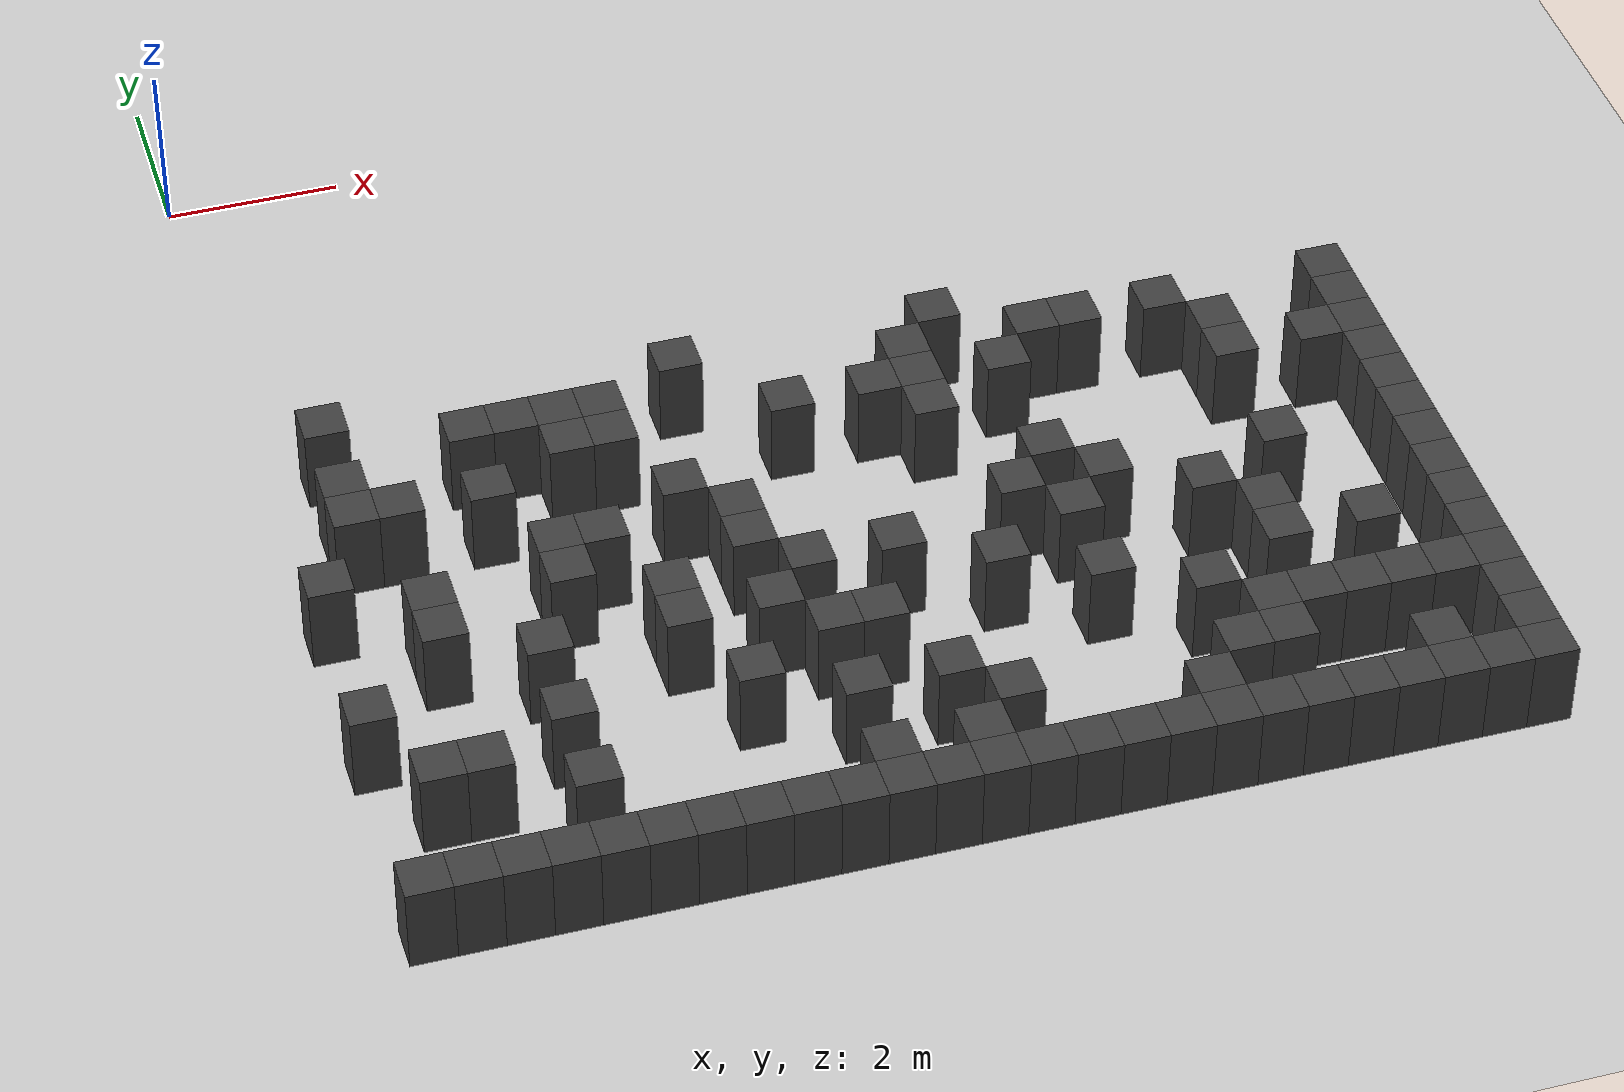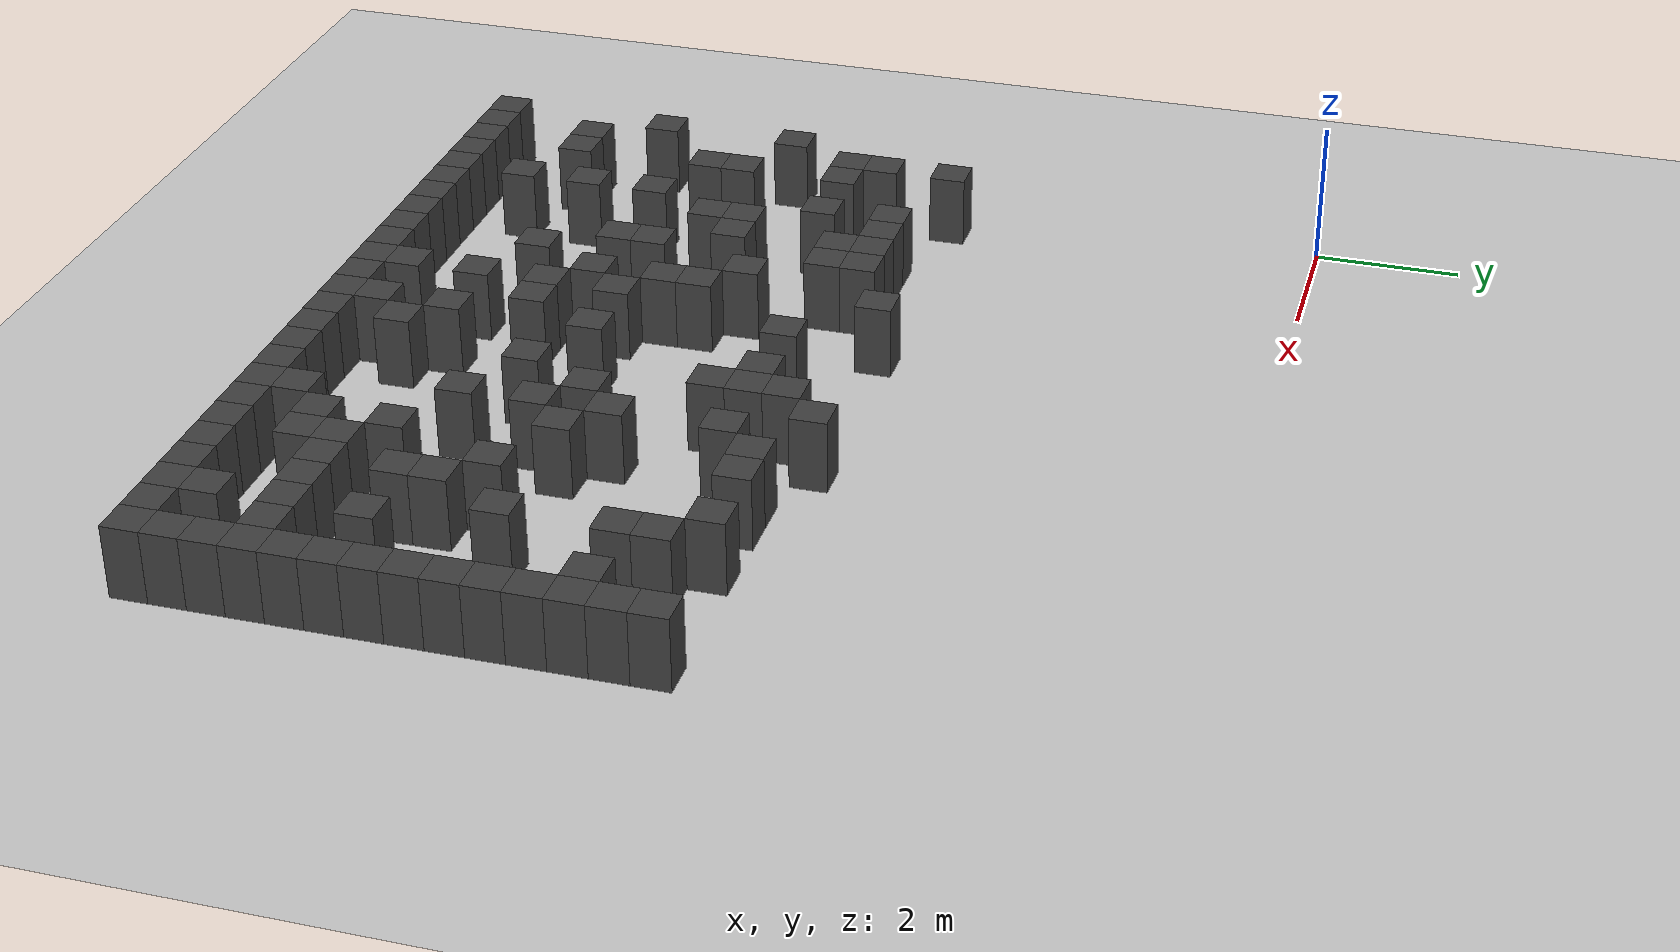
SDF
<sdf version="1.7">
 <world name="map_4302">
  <model name="ground_plane">
   <static>true</static>
   <link name="link">
    <collision name="collision">
     <geometry><plane><normal>0 0 1</normal><size>200 200</size></plane></geometry>
    </collision>
    <visual name="visual">
     <geometry><plane><normal>0 0 1</normal><size>200 200</size></plane></geometry>
     <material><ambient>0.8 0.8 0.8 1</ambient><diffuse>0.8 0.8 0.8 1</diffuse></material>
    </visual>
   </link>
  </model>
  <model name="maze_environment">
   <static>true</static>
   <link name="wall_455">
    <pose>0.750 -5.250 0.500 0 0 0</pose>
    <collision name="col"><geometry><box><size>0.5 0.5 1.0</size></box></geometry></collision>
    <visual name="vis">
     <geometry><box><size>0.5 0.5 1.0</size></box></geometry>
     <material><ambient>0.15 0.15 0.15 1</ambient><diffuse>0.25 0.25 0.25 1</diffuse></material>
    </visual>
   </link>
   <link name="wall_456">
    <pose>4.750 -5.250 0.500 0 0 0</pose>
    <collision name="col"><geometry><box><size>0.5 0.5 1.0</size></box></geometry></collision>
    <visual name="vis">
     <geometry><box><size>0.5 0.5 1.0</size></box></geometry>
     <material><ambient>0.15 0.15 0.15 1</ambient><diffuse>0.25 0.25 0.25 1</diffuse></material>
    </visual>
   </link>
   <link name="wall_457">
    <pose>7.750 -5.250 0.500 0 0 0</pose>
    <collision name="col"><geometry><box><size>0.5 0.5 1.0</size></box></geometry></collision>
    <visual name="vis">
     <geometry><box><size>0.5 0.5 1.0</size></box></geometry>
     <material><ambient>0.15 0.15 0.15 1</ambient><diffuse>0.25 0.25 0.25 1</diffuse></material>
    </visual>
   </link>
   <link name="wall_468">
    <pose>2.250 -5.750 0.500 0 0 0</pose>
    <collision name="col"><geometry><box><size>0.5 0.5 1.0</size></box></geometry></collision>
    <visual name="vis">
     <geometry><box><size>0.5 0.5 1.0</size></box></geometry>
     <material><ambient>0.15 0.15 0.15 1</ambient><diffuse>0.25 0.25 0.25 1</diffuse></material>
    </visual>
   </link>
   <link name="wall_469">
    <pose>2.750 -5.750 0.500 0 0 0</pose>
    <collision name="col"><geometry><box><size>0.5 0.5 1.0</size></box></geometry></collision>
    <visual name="vis">
     <geometry><box><size>0.5 0.5 1.0</size></box></geometry>
     <material><ambient>0.15 0.15 0.15 1</ambient><diffuse>0.25 0.25 0.25 1</diffuse></material>
    </visual>
   </link>
   <link name="wall_470">
    <pose>3.250 -5.750 0.500 0 0 0</pose>
    <collision name="col"><geometry><box><size>0.5 0.5 1.0</size></box></geometry></collision>
    <visual name="vis">
     <geometry><box><size>0.5 0.5 1.0</size></box></geometry>
     <material><ambient>0.15 0.15 0.15 1</ambient><diffuse>0.25 0.25 0.25 1</diffuse></material>
    </visual>
   </link>
   <link name="wall_471">
    <pose>3.750 -5.750 0.500 0 0 0</pose>
    <collision name="col"><geometry><box><size>0.5 0.5 1.0</size></box></geometry></collision>
    <visual name="vis">
     <geometry><box><size>0.5 0.5 1.0</size></box></geometry>
     <material><ambient>0.15 0.15 0.15 1</ambient><diffuse>0.25 0.25 0.25 1</diffuse></material>
    </visual>
   </link>
   <link name="wall_472">
    <pose>7.250 -5.750 0.500 0 0 0</pose>
    <collision name="col"><geometry><box><size>0.5 0.5 1.0</size></box></geometry></collision>
    <visual name="vis">
     <geometry><box><size>0.5 0.5 1.0</size></box></geometry>
     <material><ambient>0.15 0.15 0.15 1</ambient><diffuse>0.25 0.25 0.25 1</diffuse></material>
    </visual>
   </link>
   <link name="wall_473">
    <pose>8.750 -5.750 0.500 0 0 0</pose>
    <collision name="col"><geometry><box><size>0.5 0.5 1.0</size></box></geometry></collision>
    <visual name="vis">
     <geometry><box><size>0.5 0.5 1.0</size></box></geometry>
     <material><ambient>0.15 0.15 0.15 1</ambient><diffuse>0.25 0.25 0.25 1</diffuse></material>
    </visual>
   </link>
   <link name="wall_474">
    <pose>9.250 -5.750 0.500 0 0 0</pose>
    <collision name="col"><geometry><box><size>0.5 0.5 1.0</size></box></geometry></collision>
    <visual name="vis">
     <geometry><box><size>0.5 0.5 1.0</size></box></geometry>
     <material><ambient>0.15 0.15 0.15 1</ambient><diffuse>0.25 0.25 0.25 1</diffuse></material>
    </visual>
   </link>
   <link name="wall_475">
    <pose>10.250 -5.750 0.500 0 0 0</pose>
    <collision name="col"><geometry><box><size>0.5 0.5 1.0</size></box></geometry></collision>
    <visual name="vis">
     <geometry><box><size>0.5 0.5 1.0</size></box></geometry>
     <material><ambient>0.15 0.15 0.15 1</ambient><diffuse>0.25 0.25 0.25 1</diffuse></material>
    </visual>
   </link>
   <link name="wall_476">
    <pose>12.250 -5.750 0.500 0 0 0</pose>
    <collision name="col"><geometry><box><size>0.5 0.5 1.0</size></box></geometry></collision>
    <visual name="vis">
     <geometry><box><size>0.5 0.5 1.0</size></box></geometry>
     <material><ambient>0.15 0.15 0.15 1</ambient><diffuse>0.25 0.25 0.25 1</diffuse></material>
    </visual>
   </link>
   <link name="wall_485">
    <pose>0.750 -6.250 0.500 0 0 0</pose>
    <collision name="col"><geometry><box><size>0.5 0.5 1.0</size></box></geometry></collision>
    <visual name="vis">
     <geometry><box><size>0.5 0.5 1.0</size></box></geometry>
     <material><ambient>0.15 0.15 0.15 1</ambient><diffuse>0.25 0.25 0.25 1</diffuse></material>
    </visual>
   </link>
   <link name="wall_486">
    <pose>3.250 -6.250 0.500 0 0 0</pose>
    <collision name="col"><geometry><box><size>0.5 0.5 1.0</size></box></geometry></collision>
    <visual name="vis">
     <geometry><box><size>0.5 0.5 1.0</size></box></geometry>
     <material><ambient>0.15 0.15 0.15 1</ambient><diffuse>0.25 0.25 0.25 1</diffuse></material>
    </visual>
   </link>
   <link name="wall_487">
    <pose>3.750 -6.250 0.500 0 0 0</pose>
    <collision name="col"><geometry><box><size>0.5 0.5 1.0</size></box></geometry></collision>
    <visual name="vis">
     <geometry><box><size>0.5 0.5 1.0</size></box></geometry>
     <material><ambient>0.15 0.15 0.15 1</ambient><diffuse>0.25 0.25 0.25 1</diffuse></material>
    </visual>
   </link>
   <link name="wall_488">
    <pose>5.750 -6.250 0.500 0 0 0</pose>
    <collision name="col"><geometry><box><size>0.5 0.5 1.0</size></box></geometry></collision>
    <visual name="vis">
     <geometry><box><size>0.5 0.5 1.0</size></box></geometry>
     <material><ambient>0.15 0.15 0.15 1</ambient><diffuse>0.25 0.25 0.25 1</diffuse></material>
    </visual>
   </link>
   <link name="wall_489">
    <pose>6.750 -6.250 0.500 0 0 0</pose>
    <collision name="col"><geometry><box><size>0.5 0.5 1.0</size></box></geometry></collision>
    <visual name="vis">
     <geometry><box><size>0.5 0.5 1.0</size></box></geometry>
     <material><ambient>0.15 0.15 0.15 1</ambient><diffuse>0.25 0.25 0.25 1</diffuse></material>
    </visual>
   </link>
   <link name="wall_490">
    <pose>7.250 -6.250 0.500 0 0 0</pose>
    <collision name="col"><geometry><box><size>0.5 0.5 1.0</size></box></geometry></collision>
    <visual name="vis">
     <geometry><box><size>0.5 0.5 1.0</size></box></geometry>
     <material><ambient>0.15 0.15 0.15 1</ambient><diffuse>0.25 0.25 0.25 1</diffuse></material>
    </visual>
   </link>
   <link name="wall_491">
    <pose>8.250 -6.250 0.500 0 0 0</pose>
    <collision name="col"><geometry><box><size>0.5 0.5 1.0</size></box></geometry></collision>
    <visual name="vis">
     <geometry><box><size>0.5 0.5 1.0</size></box></geometry>
     <material><ambient>0.15 0.15 0.15 1</ambient><diffuse>0.25 0.25 0.25 1</diffuse></material>
    </visual>
   </link>
   <link name="wall_492">
    <pose>10.750 -6.250 0.500 0 0 0</pose>
    <collision name="col"><geometry><box><size>0.5 0.5 1.0</size></box></geometry></collision>
    <visual name="vis">
     <geometry><box><size>0.5 0.5 1.0</size></box></geometry>
     <material><ambient>0.15 0.15 0.15 1</ambient><diffuse>0.25 0.25 0.25 1</diffuse></material>
    </visual>
   </link>
   <link name="wall_493">
    <pose>12.250 -6.250 0.500 0 0 0</pose>
    <collision name="col"><geometry><box><size>0.5 0.5 1.0</size></box></geometry></collision>
    <visual name="vis">
     <geometry><box><size>0.5 0.5 1.0</size></box></geometry>
     <material><ambient>0.15 0.15 0.15 1</ambient><diffuse>0.25 0.25 0.25 1</diffuse></material>
    </visual>
   </link>
   <link name="wall_500">
    <pose>0.750 -6.750 0.500 0 0 0</pose>
    <collision name="col"><geometry><box><size>0.5 0.5 1.0</size></box></geometry></collision>
    <visual name="vis">
     <geometry><box><size>0.5 0.5 1.0</size></box></geometry>
     <material><ambient>0.15 0.15 0.15 1</ambient><diffuse>0.25 0.25 0.25 1</diffuse></material>
    </visual>
   </link>
   <link name="wall_501">
    <pose>1.250 -6.750 0.500 0 0 0</pose>
    <collision name="col"><geometry><box><size>0.5 0.5 1.0</size></box></geometry></collision>
    <visual name="vis">
     <geometry><box><size>0.5 0.5 1.0</size></box></geometry>
     <material><ambient>0.15 0.15 0.15 1</ambient><diffuse>0.25 0.25 0.25 1</diffuse></material>
    </visual>
   </link>
   <link name="wall_502">
    <pose>2.250 -6.750 0.500 0 0 0</pose>
    <collision name="col"><geometry><box><size>0.5 0.5 1.0</size></box></geometry></collision>
    <visual name="vis">
     <geometry><box><size>0.5 0.5 1.0</size></box></geometry>
     <material><ambient>0.15 0.15 0.15 1</ambient><diffuse>0.25 0.25 0.25 1</diffuse></material>
    </visual>
   </link>
   <link name="wall_503">
    <pose>7.250 -6.750 0.500 0 0 0</pose>
    <collision name="col"><geometry><box><size>0.5 0.5 1.0</size></box></geometry></collision>
    <visual name="vis">
     <geometry><box><size>0.5 0.5 1.0</size></box></geometry>
     <material><ambient>0.15 0.15 0.15 1</ambient><diffuse>0.25 0.25 0.25 1</diffuse></material>
    </visual>
   </link>
   <link name="wall_504">
    <pose>10.750 -6.750 0.500 0 0 0</pose>
    <collision name="col"><geometry><box><size>0.5 0.5 1.0</size></box></geometry></collision>
    <visual name="vis">
     <geometry><box><size>0.5 0.5 1.0</size></box></geometry>
     <material><ambient>0.15 0.15 0.15 1</ambient><diffuse>0.25 0.25 0.25 1</diffuse></material>
    </visual>
   </link>
   <link name="wall_505">
    <pose>11.750 -6.750 0.500 0 0 0</pose>
    <collision name="col"><geometry><box><size>0.5 0.5 1.0</size></box></geometry></collision>
    <visual name="vis">
     <geometry><box><size>0.5 0.5 1.0</size></box></geometry>
     <material><ambient>0.15 0.15 0.15 1</ambient><diffuse>0.25 0.25 0.25 1</diffuse></material>
    </visual>
   </link>
   <link name="wall_506">
    <pose>12.250 -6.750 0.500 0 0 0</pose>
    <collision name="col"><geometry><box><size>0.5 0.5 1.0</size></box></geometry></collision>
    <visual name="vis">
     <geometry><box><size>0.5 0.5 1.0</size></box></geometry>
     <material><ambient>0.15 0.15 0.15 1</ambient><diffuse>0.25 0.25 0.25 1</diffuse></material>
    </visual>
   </link>
   <link name="wall_515">
    <pose>4.250 -7.250 0.500 0 0 0</pose>
    <collision name="col"><geometry><box><size>0.5 0.5 1.0</size></box></geometry></collision>
    <visual name="vis">
     <geometry><box><size>0.5 0.5 1.0</size></box></geometry>
     <material><ambient>0.15 0.15 0.15 1</ambient><diffuse>0.25 0.25 0.25 1</diffuse></material>
    </visual>
   </link>
   <link name="wall_516">
    <pose>12.250 -7.250 0.500 0 0 0</pose>
    <collision name="col"><geometry><box><size>0.5 0.5 1.0</size></box></geometry></collision>
    <visual name="vis">
     <geometry><box><size>0.5 0.5 1.0</size></box></geometry>
     <material><ambient>0.15 0.15 0.15 1</ambient><diffuse>0.25 0.25 0.25 1</diffuse></material>
    </visual>
   </link>
   <link name="wall_521">
    <pose>0.250 -7.750 0.500 0 0 0</pose>
    <collision name="col"><geometry><box><size>0.5 0.5 1.0</size></box></geometry></collision>
    <visual name="vis">
     <geometry><box><size>0.5 0.5 1.0</size></box></geometry>
     <material><ambient>0.15 0.15 0.15 1</ambient><diffuse>0.25 0.25 0.25 1</diffuse></material>
    </visual>
   </link>
   <link name="wall_522">
    <pose>2.750 -7.750 0.500 0 0 0</pose>
    <collision name="col"><geometry><box><size>0.5 0.5 1.0</size></box></geometry></collision>
    <visual name="vis">
     <geometry><box><size>0.5 0.5 1.0</size></box></geometry>
     <material><ambient>0.15 0.15 0.15 1</ambient><diffuse>0.25 0.25 0.25 1</diffuse></material>
    </visual>
   </link>
   <link name="wall_523">
    <pose>3.250 -7.750 0.500 0 0 0</pose>
    <collision name="col"><geometry><box><size>0.5 0.5 1.0</size></box></geometry></collision>
    <visual name="vis">
     <geometry><box><size>0.5 0.5 1.0</size></box></geometry>
     <material><ambient>0.15 0.15 0.15 1</ambient><diffuse>0.25 0.25 0.25 1</diffuse></material>
    </visual>
   </link>
   <link name="wall_524">
    <pose>4.750 -7.750 0.500 0 0 0</pose>
    <collision name="col"><geometry><box><size>0.5 0.5 1.0</size></box></geometry></collision>
    <visual name="vis">
     <geometry><box><size>0.5 0.5 1.0</size></box></geometry>
     <material><ambient>0.15 0.15 0.15 1</ambient><diffuse>0.25 0.25 0.25 1</diffuse></material>
    </visual>
   </link>
   <link name="wall_525">
    <pose>8.250 -7.750 0.500 0 0 0</pose>
    <collision name="col"><geometry><box><size>0.5 0.5 1.0</size></box></geometry></collision>
    <visual name="vis">
     <geometry><box><size>0.5 0.5 1.0</size></box></geometry>
     <material><ambient>0.15 0.15 0.15 1</ambient><diffuse>0.25 0.25 0.25 1</diffuse></material>
    </visual>
   </link>
   <link name="wall_526">
    <pose>12.250 -7.750 0.500 0 0 0</pose>
    <collision name="col"><geometry><box><size>0.5 0.5 1.0</size></box></geometry></collision>
    <visual name="vis">
     <geometry><box><size>0.5 0.5 1.0</size></box></geometry>
     <material><ambient>0.15 0.15 0.15 1</ambient><diffuse>0.25 0.25 0.25 1</diffuse></material>
    </visual>
   </link>
   <link name="wall_532">
    <pose>1.250 -8.250 0.500 0 0 0</pose>
    <collision name="col"><geometry><box><size>0.5 0.5 1.0</size></box></geometry></collision>
    <visual name="vis">
     <geometry><box><size>0.5 0.5 1.0</size></box></geometry>
     <material><ambient>0.15 0.15 0.15 1</ambient><diffuse>0.25 0.25 0.25 1</diffuse></material>
    </visual>
   </link>
   <link name="wall_533">
    <pose>2.750 -8.250 0.500 0 0 0</pose>
    <collision name="col"><geometry><box><size>0.5 0.5 1.0</size></box></geometry></collision>
    <visual name="vis">
     <geometry><box><size>0.5 0.5 1.0</size></box></geometry>
     <material><ambient>0.15 0.15 0.15 1</ambient><diffuse>0.25 0.25 0.25 1</diffuse></material>
    </visual>
   </link>
   <link name="wall_534">
    <pose>4.750 -8.250 0.500 0 0 0</pose>
    <collision name="col"><geometry><box><size>0.5 0.5 1.0</size></box></geometry></collision>
    <visual name="vis">
     <geometry><box><size>0.5 0.5 1.0</size></box></geometry>
     <material><ambient>0.15 0.15 0.15 1</ambient><diffuse>0.25 0.25 0.25 1</diffuse></material>
    </visual>
   </link>
   <link name="wall_535">
    <pose>7.750 -8.250 0.500 0 0 0</pose>
    <collision name="col"><geometry><box><size>0.5 0.5 1.0</size></box></geometry></collision>
    <visual name="vis">
     <geometry><box><size>0.5 0.5 1.0</size></box></geometry>
     <material><ambient>0.15 0.15 0.15 1</ambient><diffuse>0.25 0.25 0.25 1</diffuse></material>
    </visual>
   </link>
   <link name="wall_536">
    <pose>8.750 -8.250 0.500 0 0 0</pose>
    <collision name="col"><geometry><box><size>0.5 0.5 1.0</size></box></geometry></collision>
    <visual name="vis">
     <geometry><box><size>0.5 0.5 1.0</size></box></geometry>
     <material><ambient>0.15 0.15 0.15 1</ambient><diffuse>0.25 0.25 0.25 1</diffuse></material>
    </visual>
   </link>
   <link name="wall_537">
    <pose>10.750 -8.250 0.500 0 0 0</pose>
    <collision name="col"><geometry><box><size>0.5 0.5 1.0</size></box></geometry></collision>
    <visual name="vis">
     <geometry><box><size>0.5 0.5 1.0</size></box></geometry>
     <material><ambient>0.15 0.15 0.15 1</ambient><diffuse>0.25 0.25 0.25 1</diffuse></material>
    </visual>
   </link>
   <link name="wall_538">
    <pose>12.250 -8.250 0.500 0 0 0</pose>
    <collision name="col"><geometry><box><size>0.5 0.5 1.0</size></box></geometry></collision>
    <visual name="vis">
     <geometry><box><size>0.5 0.5 1.0</size></box></geometry>
     <material><ambient>0.15 0.15 0.15 1</ambient><diffuse>0.25 0.25 0.25 1</diffuse></material>
    </visual>
   </link>
   <link name="wall_544">
    <pose>1.250 -8.750 0.500 0 0 0</pose>
    <collision name="col"><geometry><box><size>0.5 0.5 1.0</size></box></geometry></collision>
    <visual name="vis">
     <geometry><box><size>0.5 0.5 1.0</size></box></geometry>
     <material><ambient>0.15 0.15 0.15 1</ambient><diffuse>0.25 0.25 0.25 1</diffuse></material>
    </visual>
   </link>
   <link name="wall_545">
    <pose>3.750 -8.750 0.500 0 0 0</pose>
    <collision name="col"><geometry><box><size>0.5 0.5 1.0</size></box></geometry></collision>
    <visual name="vis">
     <geometry><box><size>0.5 0.5 1.0</size></box></geometry>
     <material><ambient>0.15 0.15 0.15 1</ambient><diffuse>0.25 0.25 0.25 1</diffuse></material>
    </visual>
   </link>
   <link name="wall_546">
    <pose>5.250 -8.750 0.500 0 0 0</pose>
    <collision name="col"><geometry><box><size>0.5 0.5 1.0</size></box></geometry></collision>
    <visual name="vis">
     <geometry><box><size>0.5 0.5 1.0</size></box></geometry>
     <material><ambient>0.15 0.15 0.15 1</ambient><diffuse>0.25 0.25 0.25 1</diffuse></material>
    </visual>
   </link>
   <link name="wall_547">
    <pose>6.250 -8.750 0.500 0 0 0</pose>
    <collision name="col"><geometry><box><size>0.5 0.5 1.0</size></box></geometry></collision>
    <visual name="vis">
     <geometry><box><size>0.5 0.5 1.0</size></box></geometry>
     <material><ambient>0.15 0.15 0.15 1</ambient><diffuse>0.25 0.25 0.25 1</diffuse></material>
    </visual>
   </link>
   <link name="wall_548">
    <pose>8.250 -8.750 0.500 0 0 0</pose>
    <collision name="col"><geometry><box><size>0.5 0.5 1.0</size></box></geometry></collision>
    <visual name="vis">
     <geometry><box><size>0.5 0.5 1.0</size></box></geometry>
     <material><ambient>0.15 0.15 0.15 1</ambient><diffuse>0.25 0.25 0.25 1</diffuse></material>
    </visual>
   </link>
   <link name="wall_549">
    <pose>9.750 -8.750 0.500 0 0 0</pose>
    <collision name="col"><geometry><box><size>0.5 0.5 1.0</size></box></geometry></collision>
    <visual name="vis">
     <geometry><box><size>0.5 0.5 1.0</size></box></geometry>
     <material><ambient>0.15 0.15 0.15 1</ambient><diffuse>0.25 0.25 0.25 1</diffuse></material>
    </visual>
   </link>
   <link name="wall_550">
    <pose>12.250 -8.750 0.500 0 0 0</pose>
    <collision name="col"><geometry><box><size>0.5 0.5 1.0</size></box></geometry></collision>
    <visual name="vis">
     <geometry><box><size>0.5 0.5 1.0</size></box></geometry>
     <material><ambient>0.15 0.15 0.15 1</ambient><diffuse>0.25 0.25 0.25 1</diffuse></material>
    </visual>
   </link>
   <link name="wall_556">
    <pose>2.250 -9.250 0.500 0 0 0</pose>
    <collision name="col"><geometry><box><size>0.5 0.5 1.0</size></box></geometry></collision>
    <visual name="vis">
     <geometry><box><size>0.5 0.5 1.0</size></box></geometry>
     <material><ambient>0.15 0.15 0.15 1</ambient><diffuse>0.25 0.25 0.25 1</diffuse></material>
    </visual>
   </link>
   <link name="wall_557">
    <pose>3.750 -9.250 0.500 0 0 0</pose>
    <collision name="col"><geometry><box><size>0.5 0.5 1.0</size></box></geometry></collision>
    <visual name="vis">
     <geometry><box><size>0.5 0.5 1.0</size></box></geometry>
     <material><ambient>0.15 0.15 0.15 1</ambient><diffuse>0.25 0.25 0.25 1</diffuse></material>
    </visual>
   </link>
   <link name="wall_558">
    <pose>4.750 -9.250 0.500 0 0 0</pose>
    <collision name="col"><geometry><box><size>0.5 0.5 1.0</size></box></geometry></collision>
    <visual name="vis">
     <geometry><box><size>0.5 0.5 1.0</size></box></geometry>
     <material><ambient>0.15 0.15 0.15 1</ambient><diffuse>0.25 0.25 0.25 1</diffuse></material>
    </visual>
   </link>
   <link name="wall_559">
    <pose>7.250 -9.250 0.500 0 0 0</pose>
    <collision name="col"><geometry><box><size>0.5 0.5 1.0</size></box></geometry></collision>
    <visual name="vis">
     <geometry><box><size>0.5 0.5 1.0</size></box></geometry>
     <material><ambient>0.15 0.15 0.15 1</ambient><diffuse>0.25 0.25 0.25 1</diffuse></material>
    </visual>
   </link>
   <link name="wall_560">
    <pose>10.250 -9.250 0.500 0 0 0</pose>
    <collision name="col"><geometry><box><size>0.5 0.5 1.0</size></box></geometry></collision>
    <visual name="vis">
     <geometry><box><size>0.5 0.5 1.0</size></box></geometry>
     <material><ambient>0.15 0.15 0.15 1</ambient><diffuse>0.25 0.25 0.25 1</diffuse></material>
    </visual>
   </link>
   <link name="wall_561">
    <pose>12.250 -9.250 0.500 0 0 0</pose>
    <collision name="col"><geometry><box><size>0.5 0.5 1.0</size></box></geometry></collision>
    <visual name="vis">
     <geometry><box><size>0.5 0.5 1.0</size></box></geometry>
     <material><ambient>0.15 0.15 0.15 1</ambient><diffuse>0.25 0.25 0.25 1</diffuse></material>
    </visual>
   </link>
   <link name="wall_569">
    <pose>0.250 -9.750 0.500 0 0 0</pose>
    <collision name="col"><geometry><box><size>0.5 0.5 1.0</size></box></geometry></collision>
    <visual name="vis">
     <geometry><box><size>0.5 0.5 1.0</size></box></geometry>
     <material><ambient>0.15 0.15 0.15 1</ambient><diffuse>0.25 0.25 0.25 1</diffuse></material>
    </visual>
   </link>
   <link name="wall_570">
    <pose>5.250 -9.750 0.500 0 0 0</pose>
    <collision name="col"><geometry><box><size>0.5 0.5 1.0</size></box></geometry></collision>
    <visual name="vis">
     <geometry><box><size>0.5 0.5 1.0</size></box></geometry>
     <material><ambient>0.15 0.15 0.15 1</ambient><diffuse>0.25 0.25 0.25 1</diffuse></material>
    </visual>
   </link>
   <link name="wall_571">
    <pose>5.750 -9.750 0.500 0 0 0</pose>
    <collision name="col"><geometry><box><size>0.5 0.5 1.0</size></box></geometry></collision>
    <visual name="vis">
     <geometry><box><size>0.5 0.5 1.0</size></box></geometry>
     <material><ambient>0.15 0.15 0.15 1</ambient><diffuse>0.25 0.25 0.25 1</diffuse></material>
    </visual>
   </link>
   <link name="wall_572">
    <pose>8.250 -9.750 0.500 0 0 0</pose>
    <collision name="col"><geometry><box><size>0.5 0.5 1.0</size></box></geometry></collision>
    <visual name="vis">
     <geometry><box><size>0.5 0.5 1.0</size></box></geometry>
     <material><ambient>0.15 0.15 0.15 1</ambient><diffuse>0.25 0.25 0.25 1</diffuse></material>
    </visual>
   </link>
   <link name="wall_573">
    <pose>10.250 -9.750 0.500 0 0 0</pose>
    <collision name="col"><geometry><box><size>0.5 0.5 1.0</size></box></geometry></collision>
    <visual name="vis">
     <geometry><box><size>0.5 0.5 1.0</size></box></geometry>
     <material><ambient>0.15 0.15 0.15 1</ambient><diffuse>0.25 0.25 0.25 1</diffuse></material>
    </visual>
   </link>
   <link name="wall_574">
    <pose>11.250 -9.750 0.500 0 0 0</pose>
    <collision name="col"><geometry><box><size>0.5 0.5 1.0</size></box></geometry></collision>
    <visual name="vis">
     <geometry><box><size>0.5 0.5 1.0</size></box></geometry>
     <material><ambient>0.15 0.15 0.15 1</ambient><diffuse>0.25 0.25 0.25 1</diffuse></material>
    </visual>
   </link>
   <link name="wall_575">
    <pose>12.250 -9.750 0.500 0 0 0</pose>
    <collision name="col"><geometry><box><size>0.5 0.5 1.0</size></box></geometry></collision>
    <visual name="vis">
     <geometry><box><size>0.5 0.5 1.0</size></box></geometry>
     <material><ambient>0.15 0.15 0.15 1</ambient><diffuse>0.25 0.25 0.25 1</diffuse></material>
    </visual>
   </link>
   <link name="wall_580">
    <pose>2.250 -10.250 0.500 0 0 0</pose>
    <collision name="col"><geometry><box><size>0.5 0.5 1.0</size></box></geometry></collision>
    <visual name="vis">
     <geometry><box><size>0.5 0.5 1.0</size></box></geometry>
     <material><ambient>0.15 0.15 0.15 1</ambient><diffuse>0.25 0.25 0.25 1</diffuse></material>
    </visual>
   </link>
   <link name="wall_581">
    <pose>4.250 -10.250 0.500 0 0 0</pose>
    <collision name="col"><geometry><box><size>0.5 0.5 1.0</size></box></geometry></collision>
    <visual name="vis">
     <geometry><box><size>0.5 0.5 1.0</size></box></geometry>
     <material><ambient>0.15 0.15 0.15 1</ambient><diffuse>0.25 0.25 0.25 1</diffuse></material>
    </visual>
   </link>
   <link name="wall_582">
    <pose>9.250 -10.250 0.500 0 0 0</pose>
    <collision name="col"><geometry><box><size>0.5 0.5 1.0</size></box></geometry></collision>
    <visual name="vis">
     <geometry><box><size>0.5 0.5 1.0</size></box></geometry>
     <material><ambient>0.15 0.15 0.15 1</ambient><diffuse>0.25 0.25 0.25 1</diffuse></material>
    </visual>
   </link>
   <link name="wall_583">
    <pose>12.250 -10.250 0.500 0 0 0</pose>
    <collision name="col"><geometry><box><size>0.5 0.5 1.0</size></box></geometry></collision>
    <visual name="vis">
     <geometry><box><size>0.5 0.5 1.0</size></box></geometry>
     <material><ambient>0.15 0.15 0.15 1</ambient><diffuse>0.25 0.25 0.25 1</diffuse></material>
    </visual>
   </link>
   <link name="wall_592">
    <pose>0.750 -10.750 0.500 0 0 0</pose>
    <collision name="col"><geometry><box><size>0.5 0.5 1.0</size></box></geometry></collision>
    <visual name="vis">
     <geometry><box><size>0.5 0.5 1.0</size></box></geometry>
     <material><ambient>0.15 0.15 0.15 1</ambient><diffuse>0.25 0.25 0.25 1</diffuse></material>
    </visual>
   </link>
   <link name="wall_593">
    <pose>1.250 -10.750 0.500 0 0 0</pose>
    <collision name="col"><geometry><box><size>0.5 0.5 1.0</size></box></geometry></collision>
    <visual name="vis">
     <geometry><box><size>0.5 0.5 1.0</size></box></geometry>
     <material><ambient>0.15 0.15 0.15 1</ambient><diffuse>0.25 0.25 0.25 1</diffuse></material>
    </visual>
   </link>
   <link name="wall_594">
    <pose>5.250 -10.750 0.500 0 0 0</pose>
    <collision name="col"><geometry><box><size>0.5 0.5 1.0</size></box></geometry></collision>
    <visual name="vis">
     <geometry><box><size>0.5 0.5 1.0</size></box></geometry>
     <material><ambient>0.15 0.15 0.15 1</ambient><diffuse>0.25 0.25 0.25 1</diffuse></material>
    </visual>
   </link>
   <link name="wall_595">
    <pose>6.250 -10.750 0.500 0 0 0</pose>
    <collision name="col"><geometry><box><size>0.5 0.5 1.0</size></box></geometry></collision>
    <visual name="vis">
     <geometry><box><size>0.5 0.5 1.0</size></box></geometry>
     <material><ambient>0.15 0.15 0.15 1</ambient><diffuse>0.25 0.25 0.25 1</diffuse></material>
    </visual>
   </link>
   <link name="wall_596">
    <pose>9.750 -10.750 0.500 0 0 0</pose>
    <collision name="col"><geometry><box><size>0.5 0.5 1.0</size></box></geometry></collision>
    <visual name="vis">
     <geometry><box><size>0.5 0.5 1.0</size></box></geometry>
     <material><ambient>0.15 0.15 0.15 1</ambient><diffuse>0.25 0.25 0.25 1</diffuse></material>
    </visual>
   </link>
   <link name="wall_597">
    <pose>10.250 -10.750 0.500 0 0 0</pose>
    <collision name="col"><geometry><box><size>0.5 0.5 1.0</size></box></geometry></collision>
    <visual name="vis">
     <geometry><box><size>0.5 0.5 1.0</size></box></geometry>
     <material><ambient>0.15 0.15 0.15 1</ambient><diffuse>0.25 0.25 0.25 1</diffuse></material>
    </visual>
   </link>
   <link name="wall_598">
    <pose>10.750 -10.750 0.500 0 0 0</pose>
    <collision name="col"><geometry><box><size>0.5 0.5 1.0</size></box></geometry></collision>
    <visual name="vis">
     <geometry><box><size>0.5 0.5 1.0</size></box></geometry>
     <material><ambient>0.15 0.15 0.15 1</ambient><diffuse>0.25 0.25 0.25 1</diffuse></material>
    </visual>
   </link>
   <link name="wall_599">
    <pose>11.250 -10.750 0.500 0 0 0</pose>
    <collision name="col"><geometry><box><size>0.5 0.5 1.0</size></box></geometry></collision>
    <visual name="vis">
     <geometry><box><size>0.5 0.5 1.0</size></box></geometry>
     <material><ambient>0.15 0.15 0.15 1</ambient><diffuse>0.25 0.25 0.25 1</diffuse></material>
    </visual>
   </link>
   <link name="wall_600">
    <pose>11.750 -10.750 0.500 0 0 0</pose>
    <collision name="col"><geometry><box><size>0.5 0.5 1.0</size></box></geometry></collision>
    <visual name="vis">
     <geometry><box><size>0.5 0.5 1.0</size></box></geometry>
     <material><ambient>0.15 0.15 0.15 1</ambient><diffuse>0.25 0.25 0.25 1</diffuse></material>
    </visual>
   </link>
   <link name="wall_601">
    <pose>12.250 -10.750 0.500 0 0 0</pose>
    <collision name="col"><geometry><box><size>0.5 0.5 1.0</size></box></geometry></collision>
    <visual name="vis">
     <geometry><box><size>0.5 0.5 1.0</size></box></geometry>
     <material><ambient>0.15 0.15 0.15 1</ambient><diffuse>0.25 0.25 0.25 1</diffuse></material>
    </visual>
   </link>
   <link name="wall_608">
    <pose>2.250 -11.250 0.500 0 0 0</pose>
    <collision name="col"><geometry><box><size>0.5 0.5 1.0</size></box></geometry></collision>
    <visual name="vis">
     <geometry><box><size>0.5 0.5 1.0</size></box></geometry>
     <material><ambient>0.15 0.15 0.15 1</ambient><diffuse>0.25 0.25 0.25 1</diffuse></material>
    </visual>
   </link>
   <link name="wall_609">
    <pose>6.750 -11.250 0.500 0 0 0</pose>
    <collision name="col"><geometry><box><size>0.5 0.5 1.0</size></box></geometry></collision>
    <visual name="vis">
     <geometry><box><size>0.5 0.5 1.0</size></box></geometry>
     <material><ambient>0.15 0.15 0.15 1</ambient><diffuse>0.25 0.25 0.25 1</diffuse></material>
    </visual>
   </link>
   <link name="wall_610">
    <pose>9.250 -11.250 0.500 0 0 0</pose>
    <collision name="col"><geometry><box><size>0.5 0.5 1.0</size></box></geometry></collision>
    <visual name="vis">
     <geometry><box><size>0.5 0.5 1.0</size></box></geometry>
     <material><ambient>0.15 0.15 0.15 1</ambient><diffuse>0.25 0.25 0.25 1</diffuse></material>
    </visual>
   </link>
   <link name="wall_611">
    <pose>9.750 -11.250 0.500 0 0 0</pose>
    <collision name="col"><geometry><box><size>0.5 0.5 1.0</size></box></geometry></collision>
    <visual name="vis">
     <geometry><box><size>0.5 0.5 1.0</size></box></geometry>
     <material><ambient>0.15 0.15 0.15 1</ambient><diffuse>0.25 0.25 0.25 1</diffuse></material>
    </visual>
   </link>
   <link name="wall_612">
    <pose>12.250 -11.250 0.500 0 0 0</pose>
    <collision name="col"><geometry><box><size>0.5 0.5 1.0</size></box></geometry></collision>
    <visual name="vis">
     <geometry><box><size>0.5 0.5 1.0</size></box></geometry>
     <material><ambient>0.15 0.15 0.15 1</ambient><diffuse>0.25 0.25 0.25 1</diffuse></material>
    </visual>
   </link>
   <link name="wall_621">
    <pose>5.250 -11.750 0.500 0 0 0</pose>
    <collision name="col"><geometry><box><size>0.5 0.5 1.0</size></box></geometry></collision>
    <visual name="vis">
     <geometry><box><size>0.5 0.5 1.0</size></box></geometry>
     <material><ambient>0.15 0.15 0.15 1</ambient><diffuse>0.25 0.25 0.25 1</diffuse></material>
    </visual>
   </link>
   <link name="wall_622">
    <pose>6.250 -11.750 0.500 0 0 0</pose>
    <collision name="col"><geometry><box><size>0.5 0.5 1.0</size></box></geometry></collision>
    <visual name="vis">
     <geometry><box><size>0.5 0.5 1.0</size></box></geometry>
     <material><ambient>0.15 0.15 0.15 1</ambient><diffuse>0.25 0.25 0.25 1</diffuse></material>
    </visual>
   </link>
   <link name="wall_623">
    <pose>8.750 -11.750 0.500 0 0 0</pose>
    <collision name="col"><geometry><box><size>0.5 0.5 1.0</size></box></geometry></collision>
    <visual name="vis">
     <geometry><box><size>0.5 0.5 1.0</size></box></geometry>
     <material><ambient>0.15 0.15 0.15 1</ambient><diffuse>0.25 0.25 0.25 1</diffuse></material>
    </visual>
   </link>
   <link name="wall_624">
    <pose>11.250 -11.750 0.500 0 0 0</pose>
    <collision name="col"><geometry><box><size>0.5 0.5 1.0</size></box></geometry></collision>
    <visual name="vis">
     <geometry><box><size>0.5 0.5 1.0</size></box></geometry>
     <material><ambient>0.15 0.15 0.15 1</ambient><diffuse>0.25 0.25 0.25 1</diffuse></material>
    </visual>
   </link>
   <link name="wall_625">
    <pose>12.250 -11.750 0.500 0 0 0</pose>
    <collision name="col"><geometry><box><size>0.5 0.5 1.0</size></box></geometry></collision>
    <visual name="vis">
     <geometry><box><size>0.5 0.5 1.0</size></box></geometry>
     <material><ambient>0.15 0.15 0.15 1</ambient><diffuse>0.25 0.25 0.25 1</diffuse></material>
    </visual>
   </link>
   <link name="wall_651">
    <pose>0.250 -12.250 0.500 0 0 0</pose>
    <collision name="col"><geometry><box><size>0.5 0.5 1.0</size></box></geometry></collision>
    <visual name="vis">
     <geometry><box><size>0.5 0.5 1.0</size></box></geometry>
     <material><ambient>0.15 0.15 0.15 1</ambient><diffuse>0.25 0.25 0.25 1</diffuse></material>
    </visual>
   </link>
   <link name="wall_652">
    <pose>0.750 -12.250 0.500 0 0 0</pose>
    <collision name="col"><geometry><box><size>0.5 0.5 1.0</size></box></geometry></collision>
    <visual name="vis">
     <geometry><box><size>0.5 0.5 1.0</size></box></geometry>
     <material><ambient>0.15 0.15 0.15 1</ambient><diffuse>0.25 0.25 0.25 1</diffuse></material>
    </visual>
   </link>
   <link name="wall_653">
    <pose>1.250 -12.250 0.500 0 0 0</pose>
    <collision name="col"><geometry><box><size>0.5 0.5 1.0</size></box></geometry></collision>
    <visual name="vis">
     <geometry><box><size>0.5 0.5 1.0</size></box></geometry>
     <material><ambient>0.15 0.15 0.15 1</ambient><diffuse>0.25 0.25 0.25 1</diffuse></material>
    </visual>
   </link>
   <link name="wall_654">
    <pose>1.750 -12.250 0.500 0 0 0</pose>
    <collision name="col"><geometry><box><size>0.5 0.5 1.0</size></box></geometry></collision>
    <visual name="vis">
     <geometry><box><size>0.5 0.5 1.0</size></box></geometry>
     <material><ambient>0.15 0.15 0.15 1</ambient><diffuse>0.25 0.25 0.25 1</diffuse></material>
    </visual>
   </link>
   <link name="wall_655">
    <pose>2.250 -12.250 0.500 0 0 0</pose>
    <collision name="col"><geometry><box><size>0.5 0.5 1.0</size></box></geometry></collision>
    <visual name="vis">
     <geometry><box><size>0.5 0.5 1.0</size></box></geometry>
     <material><ambient>0.15 0.15 0.15 1</ambient><diffuse>0.25 0.25 0.25 1</diffuse></material>
    </visual>
   </link>
   <link name="wall_656">
    <pose>2.750 -12.250 0.500 0 0 0</pose>
    <collision name="col"><geometry><box><size>0.5 0.5 1.0</size></box></geometry></collision>
    <visual name="vis">
     <geometry><box><size>0.5 0.5 1.0</size></box></geometry>
     <material><ambient>0.15 0.15 0.15 1</ambient><diffuse>0.25 0.25 0.25 1</diffuse></material>
    </visual>
   </link>
   <link name="wall_657">
    <pose>3.250 -12.250 0.500 0 0 0</pose>
    <collision name="col"><geometry><box><size>0.5 0.5 1.0</size></box></geometry></collision>
    <visual name="vis">
     <geometry><box><size>0.5 0.5 1.0</size></box></geometry>
     <material><ambient>0.15 0.15 0.15 1</ambient><diffuse>0.25 0.25 0.25 1</diffuse></material>
    </visual>
   </link>
   <link name="wall_658">
    <pose>3.750 -12.250 0.500 0 0 0</pose>
    <collision name="col"><geometry><box><size>0.5 0.5 1.0</size></box></geometry></collision>
    <visual name="vis">
     <geometry><box><size>0.5 0.5 1.0</size></box></geometry>
     <material><ambient>0.15 0.15 0.15 1</ambient><diffuse>0.25 0.25 0.25 1</diffuse></material>
    </visual>
   </link>
   <link name="wall_659">
    <pose>4.250 -12.250 0.500 0 0 0</pose>
    <collision name="col"><geometry><box><size>0.5 0.5 1.0</size></box></geometry></collision>
    <visual name="vis">
     <geometry><box><size>0.5 0.5 1.0</size></box></geometry>
     <material><ambient>0.15 0.15 0.15 1</ambient><diffuse>0.25 0.25 0.25 1</diffuse></material>
    </visual>
   </link>
   <link name="wall_660">
    <pose>4.750 -12.250 0.500 0 0 0</pose>
    <collision name="col"><geometry><box><size>0.5 0.5 1.0</size></box></geometry></collision>
    <visual name="vis">
     <geometry><box><size>0.5 0.5 1.0</size></box></geometry>
     <material><ambient>0.15 0.15 0.15 1</ambient><diffuse>0.25 0.25 0.25 1</diffuse></material>
    </visual>
   </link>
   <link name="wall_661">
    <pose>5.250 -12.250 0.500 0 0 0</pose>
    <collision name="col"><geometry><box><size>0.5 0.5 1.0</size></box></geometry></collision>
    <visual name="vis">
     <geometry><box><size>0.5 0.5 1.0</size></box></geometry>
     <material><ambient>0.15 0.15 0.15 1</ambient><diffuse>0.25 0.25 0.25 1</diffuse></material>
    </visual>
   </link>
   <link name="wall_662">
    <pose>5.750 -12.250 0.500 0 0 0</pose>
    <collision name="col"><geometry><box><size>0.5 0.5 1.0</size></box></geometry></collision>
    <visual name="vis">
     <geometry><box><size>0.5 0.5 1.0</size></box></geometry>
     <material><ambient>0.15 0.15 0.15 1</ambient><diffuse>0.25 0.25 0.25 1</diffuse></material>
    </visual>
   </link>
   <link name="wall_663">
    <pose>6.250 -12.250 0.500 0 0 0</pose>
    <collision name="col"><geometry><box><size>0.5 0.5 1.0</size></box></geometry></collision>
    <visual name="vis">
     <geometry><box><size>0.5 0.5 1.0</size></box></geometry>
     <material><ambient>0.15 0.15 0.15 1</ambient><diffuse>0.25 0.25 0.25 1</diffuse></material>
    </visual>
   </link>
   <link name="wall_664">
    <pose>6.750 -12.250 0.500 0 0 0</pose>
    <collision name="col"><geometry><box><size>0.5 0.5 1.0</size></box></geometry></collision>
    <visual name="vis">
     <geometry><box><size>0.5 0.5 1.0</size></box></geometry>
     <material><ambient>0.15 0.15 0.15 1</ambient><diffuse>0.25 0.25 0.25 1</diffuse></material>
    </visual>
   </link>
   <link name="wall_665">
    <pose>7.250 -12.250 0.500 0 0 0</pose>
    <collision name="col"><geometry><box><size>0.5 0.5 1.0</size></box></geometry></collision>
    <visual name="vis">
     <geometry><box><size>0.5 0.5 1.0</size></box></geometry>
     <material><ambient>0.15 0.15 0.15 1</ambient><diffuse>0.25 0.25 0.25 1</diffuse></material>
    </visual>
   </link>
   <link name="wall_666">
    <pose>7.750 -12.250 0.500 0 0 0</pose>
    <collision name="col"><geometry><box><size>0.5 0.5 1.0</size></box></geometry></collision>
    <visual name="vis">
     <geometry><box><size>0.5 0.5 1.0</size></box></geometry>
     <material><ambient>0.15 0.15 0.15 1</ambient><diffuse>0.25 0.25 0.25 1</diffuse></material>
    </visual>
   </link>
   <link name="wall_667">
    <pose>8.250 -12.250 0.500 0 0 0</pose>
    <collision name="col"><geometry><box><size>0.5 0.5 1.0</size></box></geometry></collision>
    <visual name="vis">
     <geometry><box><size>0.5 0.5 1.0</size></box></geometry>
     <material><ambient>0.15 0.15 0.15 1</ambient><diffuse>0.25 0.25 0.25 1</diffuse></material>
    </visual>
   </link>
   <link name="wall_668">
    <pose>8.750 -12.250 0.500 0 0 0</pose>
    <collision name="col"><geometry><box><size>0.5 0.5 1.0</size></box></geometry></collision>
    <visual name="vis">
     <geometry><box><size>0.5 0.5 1.0</size></box></geometry>
     <material><ambient>0.15 0.15 0.15 1</ambient><diffuse>0.25 0.25 0.25 1</diffuse></material>
    </visual>
   </link>
   <link name="wall_669">
    <pose>9.250 -12.250 0.500 0 0 0</pose>
    <collision name="col"><geometry><box><size>0.5 0.5 1.0</size></box></geometry></collision>
    <visual name="vis">
     <geometry><box><size>0.5 0.5 1.0</size></box></geometry>
     <material><ambient>0.15 0.15 0.15 1</ambient><diffuse>0.25 0.25 0.25 1</diffuse></material>
    </visual>
   </link>
   <link name="wall_670">
    <pose>9.750 -12.250 0.500 0 0 0</pose>
    <collision name="col"><geometry><box><size>0.5 0.5 1.0</size></box></geometry></collision>
    <visual name="vis">
     <geometry><box><size>0.5 0.5 1.0</size></box></geometry>
     <material><ambient>0.15 0.15 0.15 1</ambient><diffuse>0.25 0.25 0.25 1</diffuse></material>
    </visual>
   </link>
   <link name="wall_671">
    <pose>10.250 -12.250 0.500 0 0 0</pose>
    <collision name="col"><geometry><box><size>0.5 0.5 1.0</size></box></geometry></collision>
    <visual name="vis">
     <geometry><box><size>0.5 0.5 1.0</size></box></geometry>
     <material><ambient>0.15 0.15 0.15 1</ambient><diffuse>0.25 0.25 0.25 1</diffuse></material>
    </visual>
   </link>
   <link name="wall_672">
    <pose>10.750 -12.250 0.500 0 0 0</pose>
    <collision name="col"><geometry><box><size>0.5 0.5 1.0</size></box></geometry></collision>
    <visual name="vis">
     <geometry><box><size>0.5 0.5 1.0</size></box></geometry>
     <material><ambient>0.15 0.15 0.15 1</ambient><diffuse>0.25 0.25 0.25 1</diffuse></material>
    </visual>
   </link>
   <link name="wall_673">
    <pose>11.250 -12.250 0.500 0 0 0</pose>
    <collision name="col"><geometry><box><size>0.5 0.5 1.0</size></box></geometry></collision>
    <visual name="vis">
     <geometry><box><size>0.5 0.5 1.0</size></box></geometry>
     <material><ambient>0.15 0.15 0.15 1</ambient><diffuse>0.25 0.25 0.25 1</diffuse></material>
    </visual>
   </link>
   <link name="wall_674">
    <pose>11.750 -12.250 0.500 0 0 0</pose>
    <collision name="col"><geometry><box><size>0.5 0.5 1.0</size></box></geometry></collision>
    <visual name="vis">
     <geometry><box><size>0.5 0.5 1.0</size></box></geometry>
     <material><ambient>0.15 0.15 0.15 1</ambient><diffuse>0.25 0.25 0.25 1</diffuse></material>
    </visual>
   </link>
   <link name="wall_675">
    <pose>12.250 -12.250 0.500 0 0 0</pose>
    <collision name="col"><geometry><box><size>0.5 0.5 1.0</size></box></geometry></collision>
    <visual name="vis">
     <geometry><box><size>0.5 0.5 1.0</size></box></geometry>
     <material><ambient>0.15 0.15 0.15 1</ambient><diffuse>0.25 0.25 0.25 1</diffuse></material>
    </visual>
   </link>
   <link name="goal_zone">
    <pose>11.750 -11.750 0.005 0 0 0</pose>
    <visual name="vis">
     <geometry><box><size>0.45 0.45 0.01</size></box></geometry>
     <material>
      <ambient>1.0 0.0 0.0 1</ambient>
      <diffuse>1.0 0.0 0.0 1</diffuse>
      <emissive>0.60 0.00 0.00 1</emissive>
     </material>
    </visual>
   </link>
  </model>
 </world>
</sdf>
